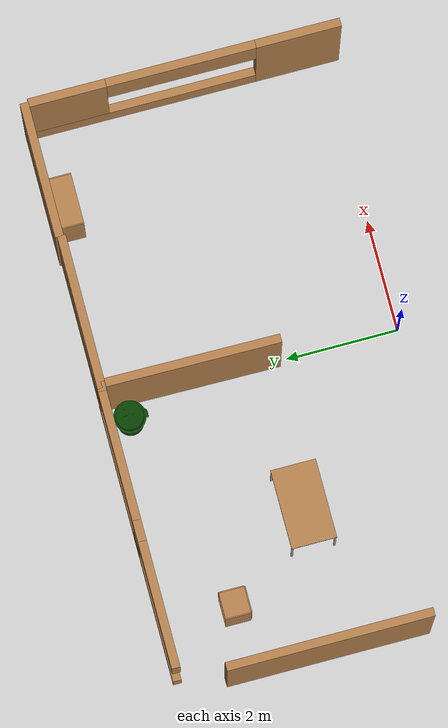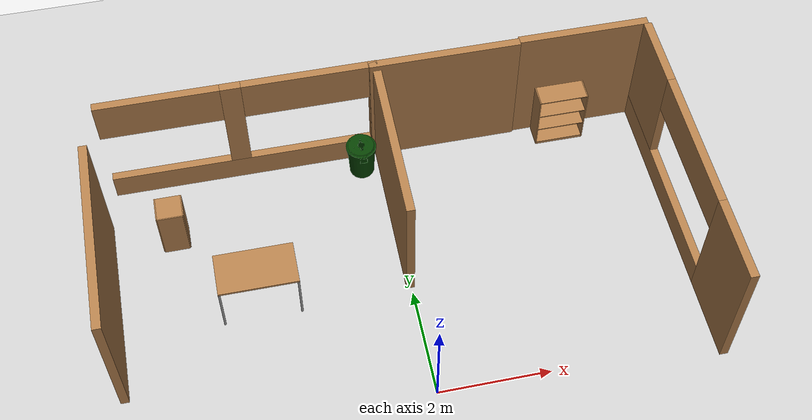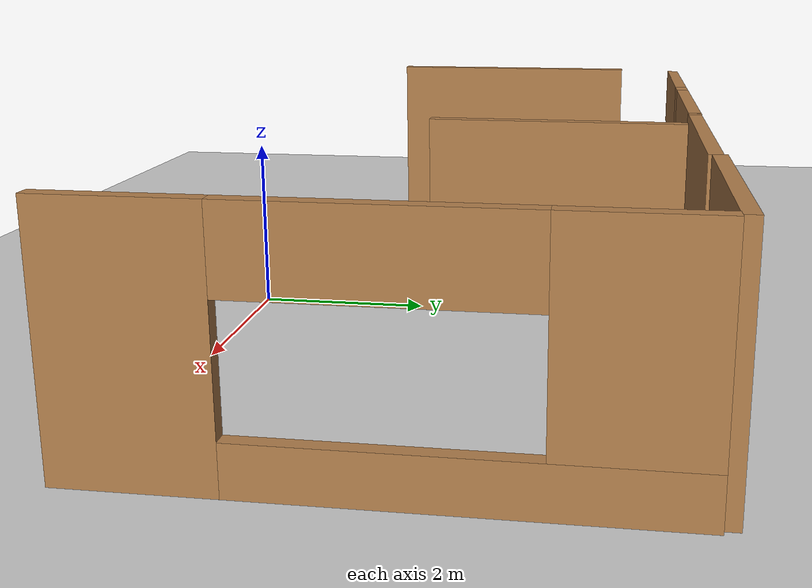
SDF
<sdf version="1.6">
 <world name="default">
  <include><uri>model://ground_plane</uri></include>
  <include><uri>model://sun</uri></include>
  <model name="world">
   <link name="Wall_81">
    <pose>3.81216 5.30314 0 0 -0 3.14159</pose>
    <inertial>
     <inertia><ixx>0</ixx><ixy>0</ixy><ixz>0</ixz><iyy>0</iyy><iyz>0</iyz><izz>0</izz></inertia>
     <mass>0</mass>
    </inertial>
    <visual name="Wall_81_Visual">
     <pose>0 0 1.25 0 -0 0</pose>
     <geometry><box><size>2.39676 0.15 2.5</size></box></geometry>
     <material>
      <script><uri>file://media/materials/scripts/gazebo.material</uri><name>Gazebo/Wood</name></script>
      <ambient>1 1 1 1</ambient>
      <diffuse>1 1 1 1</diffuse>
      <specular>0.2 0.2 0.2 1</specular>
      <emissive>0 0 0 1</emissive>
      <shader type="pixel"/>
     </material>
    </visual>
    <collision name="Wall_81_Collision">
     <pose>0 0 1.25 0 -0 0</pose>
     <geometry><box><size>2.39676 0.15 2.5</size></box></geometry>
     <surface>
      <friction>
       <ode><mu>1</mu><mu2>1</mu2><fdir1>0 0 0</fdir1><slip1>0</slip1><slip2>0</slip2></ode>
       <torsional>
        <coefficient>1</coefficient>
        <patch_radius>0</patch_radius>
        <surface_radius>0</surface_radius>
        <use_patch_radius>1</use_patch_radius>
        <ode><slip>0</slip></ode>
       </torsional>
      </friction>
      <bounce><restitution_coefficient>0</restitution_coefficient><threshold>1e+06</threshold></bounce>
      <contact>
       <collide_without_contact>0</collide_without_contact>
       <collide_without_contact_bitmask>1</collide_without_contact_bitmask>
       <collide_bitmask>1</collide_bitmask>
       <ode>
        <soft_cfm>0</soft_cfm>
        <soft_erp>0.2</soft_erp>
        <kp>1e+13</kp>
        <kd>1</kd>
        <max_vel>0.01</max_vel>
        <min_depth>0</min_depth>
       </ode>
       <bullet>
        <split_impulse>1</split_impulse>
        <split_impulse_penetration_threshold>-0.01</split_impulse_penetration_threshold>
        <soft_cfm>0</soft_cfm>
        <soft_erp>0.2</soft_erp>
        <kp>1e+13</kp>
        <kd>1</kd>
       </bullet>
      </contact>
     </surface>
    </collision>
   </link>
   <link name="Wall_82">
    <pose>1.25 5.26876 0 0 -0 3.14159</pose>
    <visual name="Wall_82_Visual">
     <pose>0 0 1.25 0 -0 0</pose>
     <geometry><box><size>2.75 0.15 2.5</size></box></geometry>
     <material>
      <script><uri>file://media/materials/scripts/gazebo.material</uri><name>Gazebo/Wood</name></script>
      <ambient>1 1 1 1</ambient>
      <diffuse>1 1 1 1</diffuse>
      <specular>0.2 0.2 0.2 1</specular>
      <emissive>0 0 0 1</emissive>
      <shader type="pixel"/>
     </material>
    </visual>
    <collision name="Wall_82_Collision">
     <pose>0 0 1.25 0 -0 0</pose>
     <geometry><box><size>2.75 0.15 2.5</size></box></geometry>
     <surface>
      <friction>
       <ode><mu>1</mu><mu2>1</mu2><fdir1>0 0 0</fdir1><slip1>0</slip1><slip2>0</slip2></ode>
       <torsional>
        <coefficient>1</coefficient>
        <patch_radius>0</patch_radius>
        <surface_radius>0</surface_radius>
        <use_patch_radius>1</use_patch_radius>
        <ode><slip>0</slip></ode>
       </torsional>
      </friction>
      <bounce><restitution_coefficient>0</restitution_coefficient><threshold>1e+06</threshold></bounce>
      <contact>
       <collide_without_contact>0</collide_without_contact>
       <collide_without_contact_bitmask>1</collide_without_contact_bitmask>
       <collide_bitmask>1</collide_bitmask>
       <ode>
        <soft_cfm>0</soft_cfm>
        <soft_erp>0.2</soft_erp>
        <kp>1e+13</kp>
        <kd>1</kd>
        <max_vel>0.01</max_vel>
        <min_depth>0</min_depth>
       </ode>
       <bullet>
        <split_impulse>1</split_impulse>
        <split_impulse_penetration_threshold>-0.01</split_impulse_penetration_threshold>
        <soft_cfm>0</soft_cfm>
        <soft_erp>0.2</soft_erp>
        <kp>1e+13</kp>
        <kd>1</kd>
       </bullet>
      </contact>
     </surface>
    </collision>
   </link>
   <link name="Wall_83">
    <pose>-2.475 5.275 0 0 -0 3.14159</pose>
    <inertial>
     <inertia><ixx>0</ixx><ixy>0</ixy><ixz>0</ixz><iyy>0</iyy><iyz>0</iyz><izz>0</izz></inertia>
     <mass>0</mass>
    </inertial>
    <visual name="Wall_83_Visual_5">
     <pose>1.39775 0 2.1 0 -0 0</pose>
     <geometry><box><size>2.20449 0.15 0.8</size></box></geometry>
     <material>
      <script><uri>file://media/materials/scripts/gazebo.material</uri><name>Gazebo/Wood</name></script>
      <ambient>1 1 1 1</ambient>
      <diffuse>1 1 1 1</diffuse>
      <specular>0.2 0.2 0.2 1</specular>
      <emissive>0 0 0 1</emissive>
      <shader type="pixel"/>
     </material>
    </visual>
    <visual name="Wall_83_Visual_2">
     <pose>0.110246 0 1.5 0 -0 0</pose>
     <geometry><box><size>0.37052 0.15 2</size></box></geometry>
     <material>
      <script><uri>file://media/materials/scripts/gazebo.material</uri><name>Gazebo/Wood</name></script>
      <ambient>1 1 1 1</ambient>
      <diffuse>1 1 1 1</diffuse>
      <specular>0.2 0.2 0.2 1</specular>
      <emissive>0 0 0 1</emissive>
      <shader type="pixel"/>
     </material>
    </visual>
    <visual name="Wall_83_Visual_6">
     <pose>1.39775 0 2.1 0 -0 0</pose>
     <geometry><box><size>2.20449 0.15 0.8</size></box></geometry>
     <material>
      <script><uri>file://media/materials/scripts/gazebo.material</uri><name>Gazebo/Wood</name></script>
      <ambient>1 1 1 1</ambient>
      <diffuse>1 1 1 1</diffuse>
      <specular>0.2 0.2 0.2 1</specular>
      <emissive>0 0 0 1</emissive>
      <shader type="pixel"/>
     </material>
    </visual>
    <visual name="Wall_83_Visual_3">
     <pose>0.110246 0 1.5 0 -0 0</pose>
     <geometry><box><size>0.37052 0.15 2</size></box></geometry>
     <material>
      <script><uri>file://media/materials/scripts/gazebo.material</uri><name>Gazebo/Wood</name></script>
      <ambient>1 1 1 1</ambient>
      <diffuse>1 1 1 1</diffuse>
      <specular>0.2 0.2 0.2 1</specular>
      <emissive>0 0 0 1</emissive>
      <shader type="pixel"/>
     </material>
    </visual>
    <visual name="Wall_83_Visual_4">
     <pose>-1.20651 0 2.1 0 -0 0</pose>
     <geometry><box><size>2.263 0.15 0.8</size></box></geometry>
     <material>
      <script><uri>file://media/materials/scripts/gazebo.material</uri><name>Gazebo/Wood</name></script>
      <ambient>1 1 1 1</ambient>
      <diffuse>1 1 1 1</diffuse>
      <specular>0.2 0.2 0.2 1</specular>
      <emissive>0 0 0 1</emissive>
      <shader type="pixel"/>
     </material>
    </visual>
    <visual name="Wall_83_Visual_1">
     <pose>0.080993 0 0.25 0 -0 0</pose>
     <geometry><box><size>4.83801 0.15 0.5</size></box></geometry>
     <material>
      <script><uri>file://media/materials/scripts/gazebo.material</uri><name>Gazebo/Wood</name></script>
      <ambient>1 1 1 1</ambient>
      <diffuse>1 1 1 1</diffuse>
      <specular>0.2 0.2 0.2 1</specular>
      <emissive>0 0 0 1</emissive>
      <shader type="pixel"/>
     </material>
    </visual>
    <visual name="Wall_83_Visual_0">
     <pose>-2.41901 0 1.25 0 -0 0</pose>
     <geometry><box><size>0.161986 0.15 2.5</size></box></geometry>
     <material>
      <script><uri>file://media/materials/scripts/gazebo.material</uri><name>Gazebo/Wood</name></script>
      <ambient>1 1 1 1</ambient>
      <diffuse>1 1 1 1</diffuse>
      <specular>0.2 0.2 0.2 1</specular>
      <emissive>0 0 0 1</emissive>
      <shader type="pixel"/>
     </material>
    </visual>
    <collision name="Wall_83_Collision_4">
     <pose>-1.20651 0 2.1 0 -0 0</pose>
     <geometry><box><size>2.263 0.15 0.8</size></box></geometry>
     <surface>
      <friction>
       <ode><mu>1</mu><mu2>1</mu2><fdir1>0 0 0</fdir1><slip1>0</slip1><slip2>0</slip2></ode>
       <torsional>
        <coefficient>1</coefficient>
        <patch_radius>0</patch_radius>
        <surface_radius>0</surface_radius>
        <use_patch_radius>1</use_patch_radius>
        <ode><slip>0</slip></ode>
       </torsional>
      </friction>
      <bounce><restitution_coefficient>0</restitution_coefficient><threshold>1e+06</threshold></bounce>
      <contact>
       <collide_without_contact>0</collide_without_contact>
       <collide_without_contact_bitmask>1</collide_without_contact_bitmask>
       <collide_bitmask>1</collide_bitmask>
       <ode>
        <soft_cfm>0</soft_cfm>
        <soft_erp>0.2</soft_erp>
        <kp>1e+13</kp>
        <kd>1</kd>
        <max_vel>0.01</max_vel>
        <min_depth>0</min_depth>
       </ode>
       <bullet>
        <split_impulse>1</split_impulse>
        <split_impulse_penetration_threshold>-0.01</split_impulse_penetration_threshold>
        <soft_cfm>0</soft_cfm>
        <soft_erp>0.2</soft_erp>
        <kp>1e+13</kp>
        <kd>1</kd>
       </bullet>
      </contact>
     </surface>
    </collision>
    <collision name="Wall_83_Collision_6">
     <pose>1.39775 0 2.1 0 -0 0</pose>
     <geometry><box><size>2.20449 0.15 0.8</size></box></geometry>
     <surface>
      <friction>
       <ode><mu>1</mu><mu2>1</mu2><fdir1>0 0 0</fdir1><slip1>0</slip1><slip2>0</slip2></ode>
       <torsional>
        <coefficient>1</coefficient>
        <patch_radius>0</patch_radius>
        <surface_radius>0</surface_radius>
        <use_patch_radius>1</use_patch_radius>
        <ode><slip>0</slip></ode>
       </torsional>
      </friction>
      <bounce><restitution_coefficient>0</restitution_coefficient><threshold>1e+06</threshold></bounce>
      <contact>
       <collide_without_contact>0</collide_without_contact>
       <collide_without_contact_bitmask>1</collide_without_contact_bitmask>
       <collide_bitmask>1</collide_bitmask>
       <ode>
        <soft_cfm>0</soft_cfm>
        <soft_erp>0.2</soft_erp>
        <kp>1e+13</kp>
        <kd>1</kd>
        <max_vel>0.01</max_vel>
        <min_depth>0</min_depth>
       </ode>
       <bullet>
        <split_impulse>1</split_impulse>
        <split_impulse_penetration_threshold>-0.01</split_impulse_penetration_threshold>
        <soft_cfm>0</soft_cfm>
        <soft_erp>0.2</soft_erp>
        <kp>1e+13</kp>
        <kd>1</kd>
       </bullet>
      </contact>
     </surface>
    </collision>
    <collision name="Wall_83_Collision_0">
     <pose>-2.41901 0 1.25 0 -0 0</pose>
     <geometry><box><size>0.161986 0.15 2.5</size></box></geometry>
     <surface>
      <friction>
       <ode><mu>1</mu><mu2>1</mu2><fdir1>0 0 0</fdir1><slip1>0</slip1><slip2>0</slip2></ode>
       <torsional>
        <coefficient>1</coefficient>
        <patch_radius>0</patch_radius>
        <surface_radius>0</surface_radius>
        <use_patch_radius>1</use_patch_radius>
        <ode><slip>0</slip></ode>
       </torsional>
      </friction>
      <bounce><restitution_coefficient>0</restitution_coefficient><threshold>1e+06</threshold></bounce>
      <contact>
       <collide_without_contact>0</collide_without_contact>
       <collide_without_contact_bitmask>1</collide_without_contact_bitmask>
       <collide_bitmask>1</collide_bitmask>
       <ode>
        <soft_cfm>0</soft_cfm>
        <soft_erp>0.2</soft_erp>
        <kp>1e+13</kp>
        <kd>1</kd>
        <max_vel>0.01</max_vel>
        <min_depth>0</min_depth>
       </ode>
       <bullet>
        <split_impulse>1</split_impulse>
        <split_impulse_penetration_threshold>-0.01</split_impulse_penetration_threshold>
        <soft_cfm>0</soft_cfm>
        <soft_erp>0.2</soft_erp>
        <kp>1e+13</kp>
        <kd>1</kd>
       </bullet>
      </contact>
     </surface>
    </collision>
    <collision name="Wall_83_Collision_1">
     <pose>0.080993 0 0.25 0 -0 0</pose>
     <geometry><box><size>4.83801 0.15 0.5</size></box></geometry>
     <surface>
      <friction>
       <ode><mu>1</mu><mu2>1</mu2><fdir1>0 0 0</fdir1><slip1>0</slip1><slip2>0</slip2></ode>
       <torsional>
        <coefficient>1</coefficient>
        <patch_radius>0</patch_radius>
        <surface_radius>0</surface_radius>
        <use_patch_radius>1</use_patch_radius>
        <ode><slip>0</slip></ode>
       </torsional>
      </friction>
      <bounce><restitution_coefficient>0</restitution_coefficient><threshold>1e+06</threshold></bounce>
      <contact>
       <collide_without_contact>0</collide_without_contact>
       <collide_without_contact_bitmask>1</collide_without_contact_bitmask>
       <collide_bitmask>1</collide_bitmask>
       <ode>
        <soft_cfm>0</soft_cfm>
        <soft_erp>0.2</soft_erp>
        <kp>1e+13</kp>
        <kd>1</kd>
        <max_vel>0.01</max_vel>
        <min_depth>0</min_depth>
       </ode>
       <bullet>
        <split_impulse>1</split_impulse>
        <split_impulse_penetration_threshold>-0.01</split_impulse_penetration_threshold>
        <soft_cfm>0</soft_cfm>
        <soft_erp>0.2</soft_erp>
        <kp>1e+13</kp>
        <kd>1</kd>
       </bullet>
      </contact>
     </surface>
    </collision>
    <collision name="Wall_83_Collision_2">
     <pose>0.110246 0 1.5 0 -0 0</pose>
     <geometry><box><size>0.37052 0.15 2</size></box></geometry>
     <surface>
      <friction>
       <ode><mu>1</mu><mu2>1</mu2><fdir1>0 0 0</fdir1><slip1>0</slip1><slip2>0</slip2></ode>
       <torsional>
        <coefficient>1</coefficient>
        <patch_radius>0</patch_radius>
        <surface_radius>0</surface_radius>
        <use_patch_radius>1</use_patch_radius>
        <ode><slip>0</slip></ode>
       </torsional>
      </friction>
      <bounce><restitution_coefficient>0</restitution_coefficient><threshold>1e+06</threshold></bounce>
      <contact>
       <collide_without_contact>0</collide_without_contact>
       <collide_without_contact_bitmask>1</collide_without_contact_bitmask>
       <collide_bitmask>1</collide_bitmask>
       <ode>
        <soft_cfm>0</soft_cfm>
        <soft_erp>0.2</soft_erp>
        <kp>1e+13</kp>
        <kd>1</kd>
        <max_vel>0.01</max_vel>
        <min_depth>0</min_depth>
       </ode>
       <bullet>
        <split_impulse>1</split_impulse>
        <split_impulse_penetration_threshold>-0.01</split_impulse_penetration_threshold>
        <soft_cfm>0</soft_cfm>
        <soft_erp>0.2</soft_erp>
        <kp>1e+13</kp>
        <kd>1</kd>
       </bullet>
      </contact>
     </surface>
    </collision>
    <collision name="Wall_83_Collision_3">
     <pose>0.110246 0 1.5 0 -0 0</pose>
     <geometry><box><size>0.37052 0.15 2</size></box></geometry>
     <surface>
      <friction>
       <ode><mu>1</mu><mu2>1</mu2><fdir1>0 0 0</fdir1><slip1>0</slip1><slip2>0</slip2></ode>
       <torsional>
        <coefficient>1</coefficient>
        <patch_radius>0</patch_radius>
        <surface_radius>0</surface_radius>
        <use_patch_radius>1</use_patch_radius>
        <ode><slip>0</slip></ode>
       </torsional>
      </friction>
      <bounce><restitution_coefficient>0</restitution_coefficient><threshold>1e+06</threshold></bounce>
      <contact>
       <collide_without_contact>0</collide_without_contact>
       <collide_without_contact_bitmask>1</collide_without_contact_bitmask>
       <collide_bitmask>1</collide_bitmask>
       <ode>
        <soft_cfm>0</soft_cfm>
        <soft_erp>0.2</soft_erp>
        <kp>1e+13</kp>
        <kd>1</kd>
        <max_vel>0.01</max_vel>
        <min_depth>0</min_depth>
       </ode>
       <bullet>
        <split_impulse>1</split_impulse>
        <split_impulse_penetration_threshold>-0.01</split_impulse_penetration_threshold>
        <soft_cfm>0</soft_cfm>
        <soft_erp>0.2</soft_erp>
        <kp>1e+13</kp>
        <kd>1</kd>
       </bullet>
      </contact>
     </surface>
    </collision>
    <collision name="Wall_83_Collision_5">
     <pose>1.39775 0 2.1 0 -0 0</pose>
     <geometry><box><size>2.20449 0.15 0.8</size></box></geometry>
     <surface>
      <friction>
       <ode><mu>1</mu><mu2>1</mu2><fdir1>0 0 0</fdir1><slip1>0</slip1><slip2>0</slip2></ode>
       <torsional>
        <coefficient>1</coefficient>
        <patch_radius>0</patch_radius>
        <surface_radius>0</surface_radius>
        <use_patch_radius>1</use_patch_radius>
        <ode><slip>0</slip></ode>
       </torsional>
      </friction>
      <bounce><restitution_coefficient>0</restitution_coefficient><threshold>1e+06</threshold></bounce>
      <contact>
       <collide_without_contact>0</collide_without_contact>
       <collide_without_contact_bitmask>1</collide_without_contact_bitmask>
       <collide_bitmask>1</collide_bitmask>
       <ode>
        <soft_cfm>0</soft_cfm>
        <soft_erp>0.2</soft_erp>
        <kp>1e+13</kp>
        <kd>1</kd>
        <max_vel>0.01</max_vel>
        <min_depth>0</min_depth>
       </ode>
       <bullet>
        <split_impulse>1</split_impulse>
        <split_impulse_penetration_threshold>-0.01</split_impulse_penetration_threshold>
        <soft_cfm>0</soft_cfm>
        <soft_erp>0.2</soft_erp>
        <kp>1e+13</kp>
        <kd>1</kd>
       </bullet>
      </contact>
     </surface>
    </collision>
   </link>
   <link name="Wall_88_clone_0">
    <pose>-5.17186 2.66687 0 0 -0 1.5708</pose>
    <inertial>
     <inertia><ixx>0</ixx><ixy>0</ixy><ixz>0</ixz><iyy>0</iyy><iyz>0</iyz><izz>0</izz></inertia>
     <mass>0</mass>
    </inertial>
    <visual name="Wall_88_Visual">
     <pose>0 0 1.25 0 -0 0</pose>
     <geometry><box><size>3.59711 0.15 2.5</size></box></geometry>
     <material>
      <script><uri>file://media/materials/scripts/gazebo.material</uri><name>Gazebo/Wood</name></script>
      <ambient>1 1 1 1</ambient>
      <diffuse>1 1 1 1</diffuse>
      <specular>0.2 0.2 0.2 1</specular>
      <emissive>0 0 0 1</emissive>
      <shader type="pixel"/>
     </material>
    </visual>
    <collision name="Wall_88_Collision">
     <pose>0 0 1.25 0 -0 0</pose>
     <geometry><box><size>3.59711 0.15 2.5</size></box></geometry>
     <surface>
      <friction>
       <ode><mu>1</mu><mu2>1</mu2><fdir1>0 0 0</fdir1><slip1>0</slip1><slip2>0</slip2></ode>
       <torsional>
        <coefficient>1</coefficient>
        <patch_radius>0</patch_radius>
        <surface_radius>0</surface_radius>
        <use_patch_radius>1</use_patch_radius>
        <ode><slip>0</slip></ode>
       </torsional>
      </friction>
      <bounce><restitution_coefficient>0</restitution_coefficient><threshold>1e+06</threshold></bounce>
      <contact>
       <collide_without_contact>0</collide_without_contact>
       <collide_without_contact_bitmask>1</collide_without_contact_bitmask>
       <collide_bitmask>1</collide_bitmask>
       <ode>
        <soft_cfm>0</soft_cfm>
        <soft_erp>0.2</soft_erp>
        <kp>1e+13</kp>
        <kd>1</kd>
        <max_vel>0.01</max_vel>
        <min_depth>0</min_depth>
       </ode>
       <bullet>
        <split_impulse>1</split_impulse>
        <split_impulse_penetration_threshold>-0.01</split_impulse_penetration_threshold>
        <soft_cfm>0</soft_cfm>
        <soft_erp>0.2</soft_erp>
        <kp>1e+13</kp>
        <kd>1</kd>
       </bullet>
      </contact>
     </surface>
    </collision>
   </link>
   <link name="Wall_88_clone_clone_1">
    <pose>-0.002462 3.69368 -0.083025 0 0 -1.57962</pose>
    <inertial>
     <inertia><ixx>0</ixx><ixy>0</ixy><ixz>0</ixz><iyy>0</iyy><iyz>0</iyz><izz>0</izz></inertia>
     <mass>0</mass>
    </inertial>
    <visual name="Wall_88_Visual">
     <pose>0 0 1.25 0 -0 0</pose>
     <geometry><box><size>3.12824 0.15 2.45305</size></box></geometry>
     <material>
      <script><uri>file://media/materials/scripts/gazebo.material</uri><name>Gazebo/Wood</name></script>
      <ambient>1 1 1 1</ambient>
      <diffuse>1 1 1 1</diffuse>
      <specular>0.2 0.2 0.2 1</specular>
      <emissive>0 0 0 1</emissive>
      <shader type="pixel"/>
     </material>
    </visual>
    <collision name="Wall_88_Collision">
     <pose>0 0 1.25 0 -0 0</pose>
     <geometry><box><size>3.12824 0.15 2.45305</size></box></geometry>
     <surface>
      <friction>
       <ode><mu>1</mu><mu2>1</mu2><fdir1>0 0 0</fdir1><slip1>0</slip1><slip2>0</slip2></ode>
       <torsional>
        <coefficient>1</coefficient>
        <patch_radius>0</patch_radius>
        <surface_radius>0</surface_radius>
        <use_patch_radius>1</use_patch_radius>
        <ode><slip>0</slip></ode>
       </torsional>
      </friction>
      <bounce><restitution_coefficient>0</restitution_coefficient><threshold>1e+06</threshold></bounce>
      <contact>
       <collide_without_contact>0</collide_without_contact>
       <collide_without_contact_bitmask>1</collide_without_contact_bitmask>
       <collide_bitmask>1</collide_bitmask>
       <ode>
        <soft_cfm>0</soft_cfm>
        <soft_erp>0.2</soft_erp>
        <kp>1e+13</kp>
        <kd>1</kd>
        <max_vel>0.01</max_vel>
        <min_depth>0</min_depth>
       </ode>
       <bullet>
        <split_impulse>1</split_impulse>
        <split_impulse_penetration_threshold>-0.01</split_impulse_penetration_threshold>
        <soft_cfm>0</soft_cfm>
        <soft_erp>0.2</soft_erp>
        <kp>1e+13</kp>
        <kd>1</kd>
       </bullet>
      </contact>
     </surface>
    </collision>
   </link>
   <link name="Wall_96">
    <pose>4.99028 2.48493 0 0 -0 1.5708</pose>
    <visual name="Wall_96_Visual_1">
     <pose>0.75174 0 0.25 0 -0 0</pose>
     <geometry><box><size>3.99652 0.15 0.5</size></box></geometry>
     <material>
      <script><uri>file://media/materials/scripts/gazebo.material</uri><name>Gazebo/Wood</name></script>
      <ambient>1 1 1 1</ambient>
      <diffuse>1 1 1 1</diffuse>
      <specular>0.2 0.2 0.2 1</specular>
      <emissive>0 0 0 1</emissive>
      <shader type="pixel"/>
     </material>
    </visual>
    <visual name="Wall_96_Visual_2">
     <pose>2.06924 0 1.5 0 -0 0</pose>
     <geometry><box><size>1.36152 0.15 2</size></box></geometry>
     <material>
      <script><uri>file://media/materials/scripts/gazebo.material</uri><name>Gazebo/Wood</name></script>
      <ambient>1 1 1 1</ambient>
      <diffuse>1 1 1 1</diffuse>
      <specular>0.2 0.2 0.2 1</specular>
      <emissive>0 0 0 1</emissive>
      <shader type="pixel"/>
     </material>
    </visual>
    <visual name="Wall_96_Visual_3">
     <pose>0.070981 0 2.1 0 -0 0</pose>
     <geometry><box><size>2.635 0.15 0.8</size></box></geometry>
     <material>
      <script><uri>file://media/materials/scripts/gazebo.material</uri><name>Gazebo/Wood</name></script>
      <ambient>1 1 1 1</ambient>
      <diffuse>1 1 1 1</diffuse>
      <specular>0.2 0.2 0.2 1</specular>
      <emissive>0 0 0 1</emissive>
      <shader type="pixel"/>
     </material>
    </visual>
    <visual name="Wall_96_Visual_0">
     <pose>-1.99826 0 1.25 0 -0 0</pose>
     <geometry><box><size>1.50348 0.15 2.5</size></box></geometry>
     <material>
      <script><uri>file://media/materials/scripts/gazebo.material</uri><name>Gazebo/Wood</name></script>
      <ambient>1 1 1 1</ambient>
      <diffuse>1 1 1 1</diffuse>
      <specular>0.2 0.2 0.2 1</specular>
      <emissive>0 0 0 1</emissive>
      <shader type="pixel"/>
     </material>
    </visual>
    <collision name="Wall_96_Collision_2">
     <pose>2.06924 0 1.5 0 -0 0</pose>
     <geometry><box><size>1.36152 0.15 2</size></box></geometry>
     <surface>
      <friction>
       <ode><mu>1</mu><mu2>1</mu2><fdir1>0 0 0</fdir1><slip1>0</slip1><slip2>0</slip2></ode>
       <torsional>
        <coefficient>1</coefficient>
        <patch_radius>0</patch_radius>
        <surface_radius>0</surface_radius>
        <use_patch_radius>1</use_patch_radius>
        <ode><slip>0</slip></ode>
       </torsional>
      </friction>
      <bounce><restitution_coefficient>0</restitution_coefficient><threshold>1e+06</threshold></bounce>
      <contact>
       <collide_without_contact>0</collide_without_contact>
       <collide_without_contact_bitmask>1</collide_without_contact_bitmask>
       <collide_bitmask>1</collide_bitmask>
       <ode>
        <soft_cfm>0</soft_cfm>
        <soft_erp>0.2</soft_erp>
        <kp>1e+13</kp>
        <kd>1</kd>
        <max_vel>0.01</max_vel>
        <min_depth>0</min_depth>
       </ode>
       <bullet>
        <split_impulse>1</split_impulse>
        <split_impulse_penetration_threshold>-0.01</split_impulse_penetration_threshold>
        <soft_cfm>0</soft_cfm>
        <soft_erp>0.2</soft_erp>
        <kp>1e+13</kp>
        <kd>1</kd>
       </bullet>
      </contact>
     </surface>
    </collision>
    <collision name="Wall_96_Collision_0">
     <pose>-1.99826 0 1.25 0 -0 0</pose>
     <geometry><box><size>1.50348 0.15 2.5</size></box></geometry>
     <surface>
      <friction>
       <ode><mu>1</mu><mu2>1</mu2><fdir1>0 0 0</fdir1><slip1>0</slip1><slip2>0</slip2></ode>
       <torsional>
        <coefficient>1</coefficient>
        <patch_radius>0</patch_radius>
        <surface_radius>0</surface_radius>
        <use_patch_radius>1</use_patch_radius>
        <ode><slip>0</slip></ode>
       </torsional>
      </friction>
      <bounce><restitution_coefficient>0</restitution_coefficient><threshold>1e+06</threshold></bounce>
      <contact>
       <collide_without_contact>0</collide_without_contact>
       <collide_without_contact_bitmask>1</collide_without_contact_bitmask>
       <collide_bitmask>1</collide_bitmask>
       <ode>
        <soft_cfm>0</soft_cfm>
        <soft_erp>0.2</soft_erp>
        <kp>1e+13</kp>
        <kd>1</kd>
        <max_vel>0.01</max_vel>
        <min_depth>0</min_depth>
       </ode>
       <bullet>
        <split_impulse>1</split_impulse>
        <split_impulse_penetration_threshold>-0.01</split_impulse_penetration_threshold>
        <soft_cfm>0</soft_cfm>
        <soft_erp>0.2</soft_erp>
        <kp>1e+13</kp>
        <kd>1</kd>
       </bullet>
      </contact>
     </surface>
    </collision>
    <collision name="Wall_96_Collision_3">
     <pose>0.070981 0 2.1 0 -0 0</pose>
     <geometry><box><size>2.635 0.15 0.8</size></box></geometry>
     <surface>
      <friction>
       <ode><mu>1</mu><mu2>1</mu2><fdir1>0 0 0</fdir1><slip1>0</slip1><slip2>0</slip2></ode>
       <torsional>
        <coefficient>1</coefficient>
        <patch_radius>0</patch_radius>
        <surface_radius>0</surface_radius>
        <use_patch_radius>1</use_patch_radius>
        <ode><slip>0</slip></ode>
       </torsional>
      </friction>
      <bounce><restitution_coefficient>0</restitution_coefficient><threshold>1e+06</threshold></bounce>
      <contact>
       <collide_without_contact>0</collide_without_contact>
       <collide_without_contact_bitmask>1</collide_without_contact_bitmask>
       <collide_bitmask>1</collide_bitmask>
       <ode>
        <soft_cfm>0</soft_cfm>
        <soft_erp>0.2</soft_erp>
        <kp>1e+13</kp>
        <kd>1</kd>
        <max_vel>0.01</max_vel>
        <min_depth>0</min_depth>
       </ode>
       <bullet>
        <split_impulse>1</split_impulse>
        <split_impulse_penetration_threshold>-0.01</split_impulse_penetration_threshold>
        <soft_cfm>0</soft_cfm>
        <soft_erp>0.2</soft_erp>
        <kp>1e+13</kp>
        <kd>1</kd>
       </bullet>
      </contact>
     </surface>
    </collision>
    <collision name="Wall_96_Collision_1">
     <pose>0.75174 0 0.25 0 -0 0</pose>
     <geometry><box><size>3.99652 0.15 0.5</size></box></geometry>
     <surface>
      <friction>
       <ode><mu>1</mu><mu2>1</mu2><fdir1>0 0 0</fdir1><slip1>0</slip1><slip2>0</slip2></ode>
       <torsional>
        <coefficient>1</coefficient>
        <patch_radius>0</patch_radius>
        <surface_radius>0</surface_radius>
        <use_patch_radius>1</use_patch_radius>
        <ode><slip>0</slip></ode>
       </torsional>
      </friction>
      <bounce><restitution_coefficient>0</restitution_coefficient><threshold>1e+06</threshold></bounce>
      <contact>
       <collide_without_contact>0</collide_without_contact>
       <collide_without_contact_bitmask>1</collide_without_contact_bitmask>
       <collide_bitmask>1</collide_bitmask>
       <ode>
        <soft_cfm>0</soft_cfm>
        <soft_erp>0.2</soft_erp>
        <kp>1e+13</kp>
        <kd>1</kd>
        <max_vel>0.01</max_vel>
        <min_depth>0</min_depth>
       </ode>
       <bullet>
        <split_impulse>1</split_impulse>
        <split_impulse_penetration_threshold>-0.01</split_impulse_penetration_threshold>
        <soft_cfm>0</soft_cfm>
        <soft_erp>0.2</soft_erp>
        <kp>1e+13</kp>
        <kd>1</kd>
       </bullet>
      </contact>
     </surface>
    </collision>
   </link>
   <model name="bookshelf_1">
    <static>1</static>
    <link name="link">
     <inertial><mass>1</mass></inertial>
     <collision name="back">
      <pose>0 0.005 0.6 0 -0 0</pose>
      <geometry><box><size>0.9 0.01 1.2</size></box></geometry>
     </collision>
     <visual name="visual1">
      <pose>0 0.005 0.6 0 -0 0</pose>
      <geometry><box><size>0.9 0.01 1.2</size></box></geometry>
      <material>
       <script><uri>file://media/materials/scripts/gazebo.material</uri><name>Gazebo/Wood</name></script>
      </material>
     </visual>
     <collision name="left_side">
      <pose>0.45 -0.195 0.6 0 -0 0</pose>
      <geometry><box><size>0.02 0.4 1.2</size></box></geometry>
     </collision>
     <visual name="visual2">
      <pose>0.45 -0.195 0.6 0 -0 0</pose>
      <geometry><box><size>0.02 0.4 1.2</size></box></geometry>
      <material>
       <script><uri>file://media/materials/scripts/gazebo.material</uri><name>Gazebo/Wood</name></script>
      </material>
     </visual>
     <collision name="right_side">
      <pose>-0.45 -0.195 0.6 0 -0 0</pose>
      <geometry><box><size>0.02 0.4 1.2</size></box></geometry>
     </collision>
     <visual name="visual3">
      <pose>-0.45 -0.195 0.6 0 -0 0</pose>
      <geometry><box><size>0.02 0.4 1.2</size></box></geometry>
      <material>
       <script><uri>file://media/materials/scripts/gazebo.material</uri><name>Gazebo/Wood</name></script>
      </material>
     </visual>
     <collision name="bottom">
      <pose>0 -0.195 0.03 0 -0 0</pose>
      <geometry><box><size>0.88 0.4 0.06</size></box></geometry>
     </collision>
     <visual name="visual4">
      <pose>0 -0.195 0.03 0 -0 0</pose>
      <geometry><box><size>0.88 0.4 0.06</size></box></geometry>
      <material>
       <script><uri>file://media/materials/scripts/gazebo.material</uri><name>Gazebo/Wood</name></script>
      </material>
     </visual>
     <collision name="top">
      <pose>0 -0.195 1.19 0 -0 0</pose>
      <geometry><box><size>0.88 0.4 0.02</size></box></geometry>
     </collision>
     <visual name="visual5">
      <pose>0 -0.195 1.19 0 -0 0</pose>
      <geometry><box><size>0.88 0.4 0.02</size></box></geometry>
      <material>
       <script><uri>file://media/materials/scripts/gazebo.material</uri><name>Gazebo/Wood</name></script>
      </material>
     </visual>
     <collision name="low_shelf">
      <pose>0 -0.195 0.43 0 -0 0</pose>
      <geometry><box><size>0.88 0.4 0.02</size></box></geometry>
     </collision>
     <visual name="visual6">
      <pose>0 -0.195 0.43 0 -0 0</pose>
      <geometry><box><size>0.88 0.4 0.02</size></box></geometry>
      <material>
       <script><uri>file://media/materials/scripts/gazebo.material</uri><name>Gazebo/Wood</name></script>
      </material>
     </visual>
     <collision name="high_shelf">
      <pose>0 -0.195 0.8 0 -0 0</pose>
      <geometry><box><size>0.88 0.4 0.02</size></box></geometry>
     </collision>
     <visual name="visual7">
      <pose>0 -0.195 0.8 0 -0 0</pose>
      <geometry><box><size>0.88 0.4 0.02</size></box></geometry>
      <material>
       <script><uri>file://media/materials/scripts/gazebo.material</uri><name>Gazebo/Wood</name></script>
      </material>
     </visual>
    </link>
    <pose>3.45192 5.20625 0 0 -0 0</pose>
   </model>
   <model name="cabinet_1">
    <static>1</static>
    <link name="cabinet_bottom_plate">
     <inertial>
      <pose>0 0 -1 0 -0 0</pose>
      <inertia><ixx>2.05</ixx><ixy>0</ixy><ixz>0</ixz><iyy>2.05</iyy><iyz>0</iyz><izz>2.05</izz></inertia>
      <mass>25</mass>
     </inertial>
     <collision name="cabinet_bottom_plate_geom">
      <pose>0 0 0.01 0 -0 0</pose>
      <geometry><box><size>0.45 0.45 0.02</size></box></geometry>
     </collision>
     <visual name="cabinet_bottom_plate_geom_visual">
      <pose>0 0 0.01 0 -0 0</pose>
      <geometry><box><size>0.45 0.45 0.02</size></box></geometry>
      <material>
       <script><uri>file://media/materials/scripts/gazebo.material</uri><name>Gazebo/Wood</name></script>
      </material>
     </visual>
     <collision name="cabinet_bottom_plate_geom_cabinet_back_plate">
      <pose>0.235 0 0.51 0 -0 0</pose>
      <geometry><box><size>0.02 0.45 1.02</size></box></geometry>
     </collision>
     <visual name="cabinet_bottom_plate_geom_cabinet_back_plate_visual">
      <pose>0.235 0 0.51 0 -0 0</pose>
      <geometry><box><size>0.02 0.45 1.02</size></box></geometry>
      <material>
       <script><uri>file://media/materials/scripts/gazebo.material</uri><name>Gazebo/Wood</name></script>
      </material>
     </visual>
     <collision name="cabinet_bottom_plate_geom_cabinet_left_plate">
      <pose>0 0.235 0.51 0 -0 0</pose>
      <geometry><box><size>0.45 0.02 1.02</size></box></geometry>
     </collision>
     <visual name="cabinet_bottom_plate_geom_cabinet_left_plate_visual">
      <pose>0 0.235 0.51 0 -0 0</pose>
      <geometry><box><size>0.45 0.02 1.02</size></box></geometry>
      <material>
       <script><uri>file://media/materials/scripts/gazebo.material</uri><name>Gazebo/Wood</name></script>
      </material>
     </visual>
     <collision name="cabinet_bottom_plate_geom_cabinet_middle_plate">
      <pose>0 0 0.51 0 -0 0</pose>
      <geometry><box><size>0.45 0.45 0.02</size></box></geometry>
     </collision>
     <visual name="cabinet_bottom_plate_geom_cabinet_middle_plate_visual">
      <pose>0 0 0.51 0 -0 0</pose>
      <geometry><box><size>0.45 0.45 0.02</size></box></geometry>
      <material>
       <script><uri>file://media/materials/scripts/gazebo.material</uri><name>Gazebo/Wood</name></script>
      </material>
     </visual>
     <collision name="cabinet_bottom_plate_geom_cabinet_right_plate">
      <pose>0 -0.235 0.51 0 -0 0</pose>
      <geometry><box><size>0.45 0.02 1.02</size></box></geometry>
     </collision>
     <visual name="cabinet_bottom_plate_geom_cabinet_right_plate_visual">
      <pose>0 -0.235 0.51 0 -0 0</pose>
      <geometry><box><size>0.45 0.02 1.02</size></box></geometry>
      <material>
       <script><uri>file://media/materials/scripts/gazebo.material</uri><name>Gazebo/Wood</name></script>
      </material>
     </visual>
     <collision name="cabinet_bottom_plate_geom_cabinet_top_plate">
      <pose>0 0 1.01 0 -0 0</pose>
      <geometry><box><size>0.45 0.45 0.02</size></box></geometry>
     </collision>
     <visual name="cabinet_bottom_plate_geom_cabinet_top_plate_visual">
      <pose>0 0 1.01 0 -0 0</pose>
      <geometry><box><size>0.45 0.45 0.02</size></box></geometry>
      <material>
       <script><uri>file://media/materials/scripts/gazebo.material</uri><name>Gazebo/Wood</name></script>
      </material>
     </visual>
    </link>
    <pose>-3.99335 3.99592 0 0 0 -1.5708</pose>
   </model>
   <model name="first_2015_trash_can_0">
    <link name="link">
     <inertial>
      <pose>0 0 0.3683 0 -0 0</pose>
      <mass>4.83076</mass>
      <inertia>
       <ixx>0.281534</ixx>
       <ixy>0</ixy>
       <ixz>0</ixz>
       <iyy>0.281534</iyy>
       <iyz>0</iyz>
       <izz>0.126223</izz>
      </inertia>
     </inertial>
     <visual name="visual">
      <geometry><mesh><uri>model://first_2015_trash_can/meshes/trash_can.dae</uri></mesh></geometry>
     </visual>
     <collision name="collision">
      <geometry><mesh><uri>model://first_2015_trash_can/meshes/trash_can.dae</uri></mesh></geometry>
     </collision>
    </link>
    <pose>-0.380788 4.89439 0 0 -0 0</pose>
   </model>
   <model name="table">
    <static>0</static>
    <link name="link">
     <collision name="surface">
      <pose>0 0 1 0 -0 0</pose>
      <geometry><box><size>1.5 0.8 0.03</size></box></geometry>
      <surface><friction><ode><mu>0.6</mu><mu2>0.6</mu2></ode></friction></surface>
     </collision>
     <visual name="visual1">
      <pose>0 0 1 0 -0 0</pose>
      <geometry><box><size>1.4 0.8 0.04</size></box></geometry>
      <material>
       <script><uri>file://media/materials/scripts/gazebo.material</uri><name>Gazebo/Wood</name></script>
      </material>
     </visual>
     <collision name="front_left_leg">
      <pose>0.68 0.38 0.5 0 -0 0</pose>
      <geometry><cylinder><radius>0.02</radius><length>1</length></cylinder></geometry>
     </collision>
     <visual name="front_left_leg">
      <pose>0.68 0.38 0.5 0 -0 0</pose>
      <geometry><cylinder><radius>0.02</radius><length>1</length></cylinder></geometry>
      <material>
       <script><uri>file://media/materials/scripts/gazebo.material</uri><name>Gazebo/Grey</name></script>
      </material>
     </visual>
     <collision name="front_right_leg">
      <pose>0.68 -0.38 0.5 0 -0 0</pose>
      <geometry><cylinder><radius>0.02</radius><length>1</length></cylinder></geometry>
     </collision>
     <visual name="front_right_leg">
      <pose>0.68 -0.38 0.5 0 -0 0</pose>
      <geometry><cylinder><radius>0.02</radius><length>1</length></cylinder></geometry>
      <material>
       <script><uri>file://media/materials/scripts/gazebo.material</uri><name>Gazebo/Grey</name></script>
      </material>
     </visual>
     <collision name="back_right_leg">
      <pose>-0.68 -0.38 0.5 0 -0 0</pose>
      <geometry><cylinder><radius>0.02</radius><length>1</length></cylinder></geometry>
     </collision>
     <visual name="back_right_leg">
      <pose>-0.68 -0.38 0.5 0 -0 0</pose>
      <geometry><cylinder><radius>0.02</radius><length>1</length></cylinder></geometry>
      <material>
       <script><uri>file://media/materials/scripts/gazebo.material</uri><name>Gazebo/Grey</name></script>
      </material>
     </visual>
     <collision name="back_left_leg">
      <pose>-0.68 0.38 0.5 0 -0 0</pose>
      <geometry><cylinder><radius>0.02</radius><length>1</length></cylinder></geometry>
     </collision>
     <visual name="back_left_leg">
      <pose>-0.68 0.38 0.5 0 -0 0</pose>
      <geometry><cylinder><radius>0.02</radius><length>1</length></cylinder></geometry>
      <material>
       <script><uri>file://media/materials/scripts/gazebo.material</uri><name>Gazebo/Grey</name></script>
      </material>
     </visual>
     <inertial>
      <inertia><ixx>1</ixx><ixy>0</ixy><ixz>0</ixz><iyy>1</iyy><iyz>0</iyz><izz>1</izz></inertia>
      <mass>1</mass>
     </inertial>
    </link>
    <pose>-2.65728 2.42376 0 0 -0 0</pose>
   </model>
   <static>1</static>
  </model>
 </world>
</sdf>
